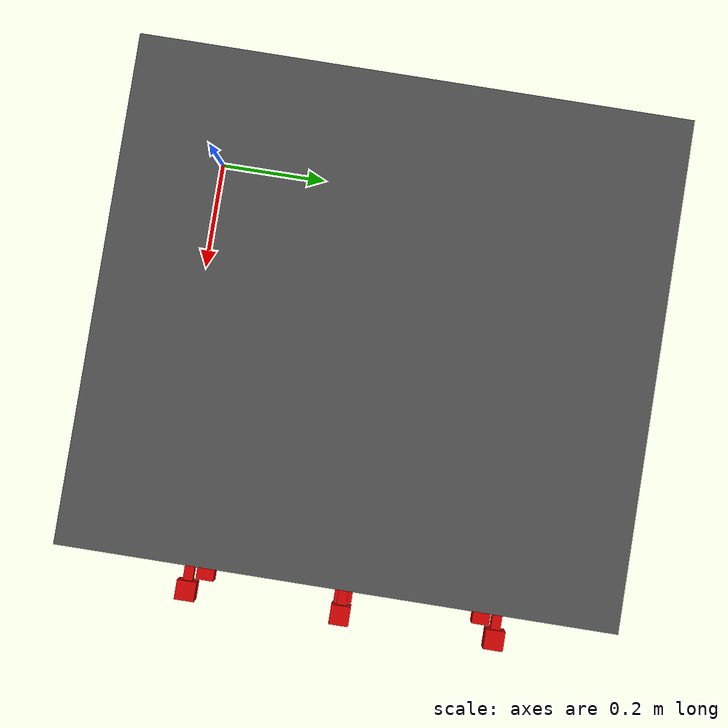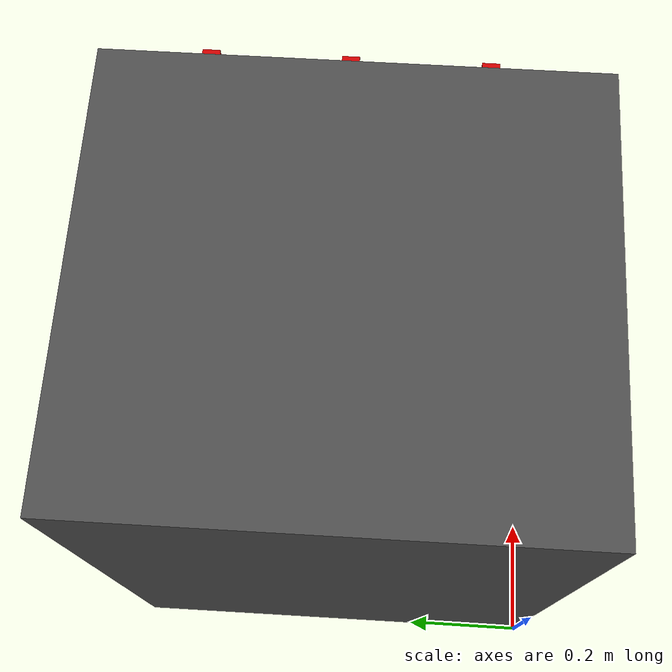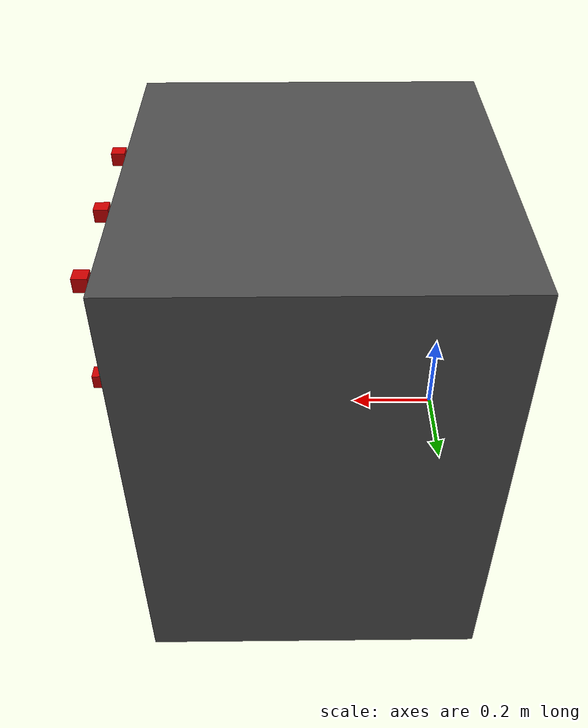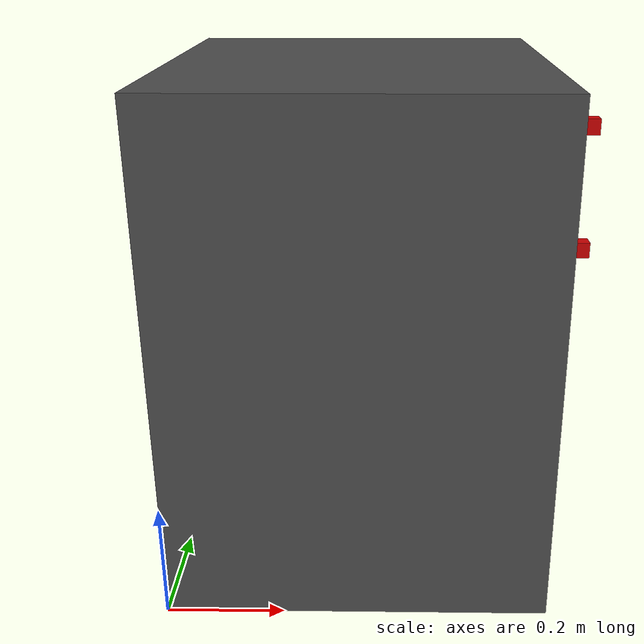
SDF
<?xml version="1.0" ?>
<sdf version="1.9">
  <model name="panel">
    <static>true</static>
    <link name="link">
      <collision name="collision">
        <pose>0 0 0.0 0 0 0</pose>
        <geometry>
          <mesh>
            <uri>meshes/ButtonPanel.stl</uri>
          </mesh>
        </geometry>
      </collision>
      <visual name="visual">
        <geometry>
          <mesh>
            <uri>meshes/ButtonPanel.stl</uri>
          </mesh>
        </geometry>
        <material>
          <ambient>0.2 0.2 0.2 1</ambient>
          <diffuse>0.3 0.3 0.3 1</diffuse>
          <specular>0.5 0.5 0.5 1</specular>
        </material>
      </visual>
    </link>
    <!-- 3x2 grid of buttons on the front face -->
    <!-- Stems point into panel along -X, caps face outward -->
    <!-- Row 1 (bottom) -->
    <include>
      <uri>model://Button</uri>
      <name>Button_1</name>
      <pose>0.7 0.15 0.59 0 -1.5708 0</pose>
    </include>
    <include>
      <uri>model://Button</uri>
      <name>Button_2</name>
      <pose>0.7 0.35 0.59 0 -1.5708 0</pose>
    </include>
    <include>
      <uri>model://Button</uri>
      <name>Button_3</name>
      <pose>0.7 0.55 0.59 0 -1.5708 0</pose>
    </include>
    <!-- Row 2 (top) -->
    <include>
      <uri>model://Button</uri>
      <name>Button_4</name>
      <pose>0.7 0.15 0.79 0 -1.5708 0</pose>
    </include>
    <include>
      <uri>model://Button</uri>
      <name>Button_5</name>
      <pose>0.7 0.35 0.79 0 -1.5708 0</pose>
    </include>
    <include>
      <uri>model://Button</uri>
      <name>Button_6</name>
      <pose>0.7 0.55 0.79 0 -1.5708 0</pose>
    </include>
  </model>
</sdf>

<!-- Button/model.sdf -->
<sdf version="1.9">
  <model name="button">
    <static>true</static>
    <link name="link">
      <collision name="button_collision">
        <pose>0 0 0.0 0 0 0</pose>
        <geometry>
          <mesh>
            <uri>meshes/1x1Button.stl</uri>
          </mesh>
        </geometry>
      </collision>
      <visual name="button_visual">
        <geometry>
          <mesh>
            <uri>meshes/1x1Button.stl</uri>
          </mesh>
        </geometry>
        <material>
          <ambient>0.5 0.0 0.0 1</ambient>
          <diffuse>0.8 0.0 0.0 1</diffuse>
          <specular>0.9 0.4 0.4 1</specular>
        </material>
      </visual>
      <sensor name="button_contact" type="contact">
        <contact>
          <collision>button_collision</collision>
        </contact>
        <always_on>true</always_on>
        <update_rate>30</update_rate>
      </sensor>
    </link>
    <plugin filename="ignition-gazebo-contact-system" name="gz::sim::systems::Contact"/>
  </model>
</sdf>
